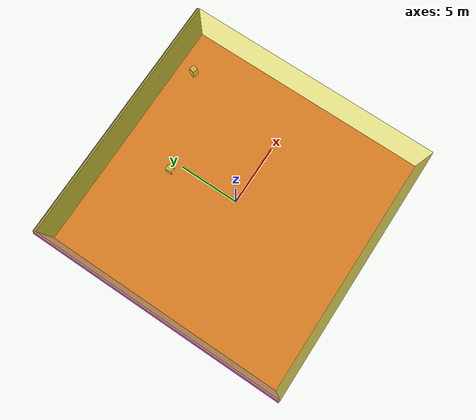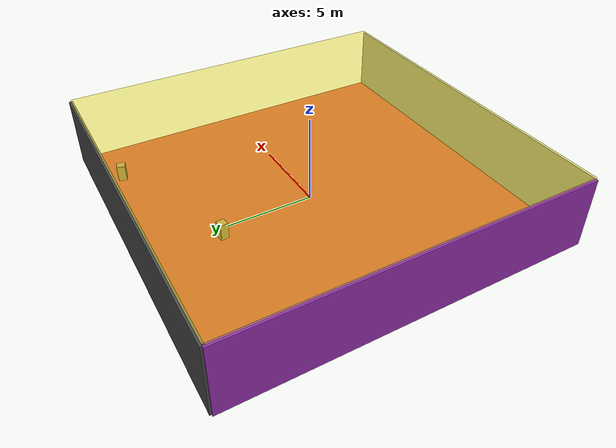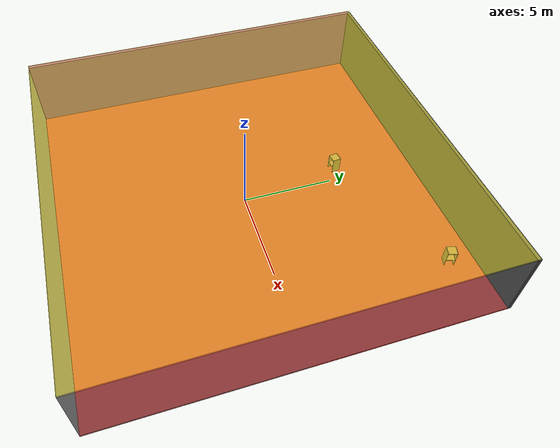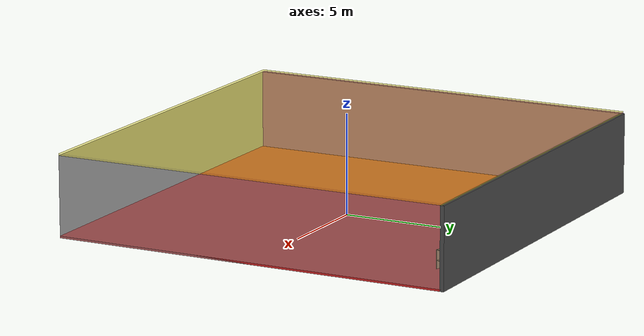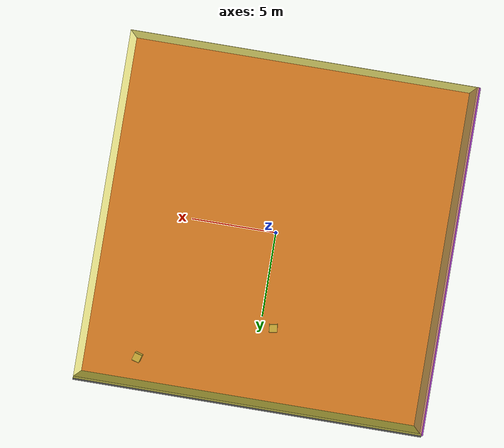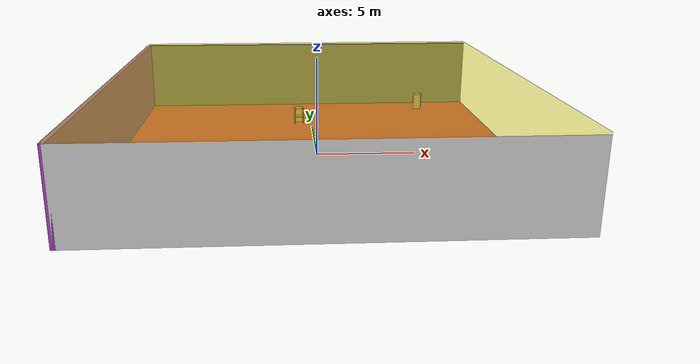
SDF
<sdf version="1.4">
 <world name="default">
  <physics type="ode">
   <max_step_size>0.001</max_step_size>
   <real_time_factor>1</real_time_factor>
   <real_time_update_rate>1000</real_time_update_rate>
   <gravity>0 0 -9.8</gravity>
  </physics>
  <scene><ambient>0.4 0.4 0.4 1</ambient><background>0.7 0.7 0.7 1</background><shadows>1</shadows></scene>
  <model name="Surrounding">
   <static>1</static>
   <link name="Ceiling">
    <collision name="Ceiling_Collision"><geometry><box><size>20 20 0.1</size></box></geometry></collision>
    <visual name="Ceiling_Visual">
     <geometry><box><size>20 20 0.1</size></box></geometry>
     <material>
      <script>
       <uri>file://media/materials/scripts/gazebo.material</uri>
       <name>Gazebo/YellowTransparent</name>
      </script>
     </material>
    </visual>
    <pose>0 0 4.05 0 0 0</pose>
   </link>
   <link name="Wall_South">
    <collision name="Wall_South_Collision">
     <geometry><box><size>20 0 4</size></box></geometry>
     <pose>0 0 2 0 -0 0</pose>
    </collision>
    <visual name="Wall_South_Visual">
     <pose>0 0 2 0 -0 0</pose>
     <geometry><box><size>20 0 4</size></box></geometry>
     <material>
      <script><uri>file://media/materials/scripts/gazebo.material</uri><name>Gazebo/LightOn</name></script>
     </material>
    </visual>
    <velocity_decay><linear>0</linear><angular>0</angular></velocity_decay>
    <pose>0 -10 0 0 -0 0</pose>
   </link>
   <link name="Wall_East">
    <collision name="Wall_21_Collision">
     <geometry><box><size>20 0 4</size></box></geometry>
     <pose>0 0 2 0 -0 0</pose>
    </collision>
    <visual name="Wall_21_Visual">
     <pose>0 0 2 0 -0 0</pose>
     <geometry><box><size>20 0 4</size></box></geometry>
     <material>
      <script><uri>file://media/materials/scripts/gazebo.material</uri><name>Gazebo/GreyTransparent</name></script>
     </material>
    </visual>
    <velocity_decay><linear>0</linear><angular>0</angular></velocity_decay>
    <pose>10 0 0 0 -0 1.5708</pose>
   </link>
   <link name="Wall_North">
    <collision name="Wall_22_Collision">
     <geometry><box><size>20 0.2 4</size></box></geometry>
     <pose>0 0 2 0 -0 0</pose>
    </collision>
    <visual name="Wall_22_Visual">
     <pose>0 0 2 0 -0 0</pose>
     <geometry><box><size>20 0.2 4</size></box></geometry>
     <material>
      <script><uri>file://media/materials/scripts/gazebo.material</uri><name>Gazebo/Road</name></script>
     </material>
    </visual>
    <velocity_decay><linear>0</linear><angular>0</angular></velocity_decay>
    <pose>0 10 0 0 -0 0</pose>
   </link>
   <link name="Wall_West">
    <collision name="Wall_23_Collision">
     <geometry><box><size>20 0.2 4</size></box></geometry>
     <pose>0 0 2 0 -0 0</pose>
    </collision>
    <visual name="Wall_23_Visual">
     <pose>0 0 2 0 -0 0</pose>
     <geometry><box><size>20 0.2 4</size></box></geometry>
     <material>
      <script><uri>file://media/materials/scripts/gazebo.material</uri><name>Gazebo/Purple</name></script>
     </material>
    </visual>
    <velocity_decay><linear>0</linear><angular>0</angular></velocity_decay>
    <pose>-10 0 0 0 0 -1.5708</pose>
   </link>
   <link name="Ground_link">
    <collision name="collision">
     <pose>0 0 .05 0 -0 0</pose>
     <geometry><box><size>20 20 0.1</size></box></geometry>
    </collision>
    <visual name="visual">
     <pose>0 0 .05 0 -0 0</pose>
     <geometry><box><size>20 20 0.1</size></box></geometry>
     <material>
      <script><uri>file://media/materials/scripts/gazebo.material</uri><name>Gazebo/RedGlow</name></script>
     </material>
    </visual>
   </link>
   <static>1</static>
  </model>
  <spherical_coordinates>
   <surface_model>EARTH_WGS84</surface_model>
   <latitude_deg>0</latitude_deg>
   <longitude_deg>0</longitude_deg>
   <elevation>0</elevation>
   <heading_deg>0</heading_deg>
  </spherical_coordinates>
  <light name="lightball_0" type="diffuse">
   <diffuse>0.8 0.8 0.8 1</diffuse>
   <specular>0.2 0.2 0.2 1</specular>
   <attenuation>
    <range>100</range>
    <constant>0.7</constant>
    <linear>0.01</linear>
    <quadratic>0.001</quadratic>
   </attenuation>
   <direction>-0.5 0.1 -0.9</direction>
   <pose>-0.457250121373 -7.09997906922 3.20098685233 0 0 0</pose>
  </light>
  <light name="lightball_1" type="diffuse">
   <diffuse>0.8 0.8 0.8 1</diffuse>
   <specular>0.2 0.2 0.2 1</specular>
   <attenuation>
    <range>100</range>
    <constant>0.7</constant>
    <linear>0.01</linear>
    <quadratic>0.001</quadratic>
   </attenuation>
   <direction>-0.5 0.1 -0.9</direction>
   <pose>2.97669964034 -4.26278891486 2.4420067459 0 0 0</pose>
  </light>
  <light name="lightball_2" type="diffuse">
   <diffuse>0.8 0.8 0.8 1</diffuse>
   <specular>0.2 0.2 0.2 1</specular>
   <attenuation>
    <range>100</range>
    <constant>0.7</constant>
    <linear>0.01</linear>
    <quadratic>0.001</quadratic>
   </attenuation>
   <direction>-0.5 0.1 -0.9</direction>
   <pose>-7.39560512413 0.624300925711 0.652318941972 0 0 0</pose>
  </light>
  <light name="lightball_3" type="diffuse">
   <diffuse>0.8 0.8 0.8 1</diffuse>
   <specular>0.2 0.2 0.2 1</specular>
   <attenuation>
    <range>100</range>
    <constant>0.7</constant>
    <linear>0.01</linear>
    <quadratic>0.001</quadratic>
   </attenuation>
   <direction>-0.5 0.1 -0.9</direction>
   <pose>-1.7933293679 7.06938800756 2.14912122765 0 0 0</pose>
  </light>
  <light name="lightball_4" type="diffuse">
   <diffuse>0.8 0.8 0.8 1</diffuse>
   <specular>0.2 0.2 0.2 1</specular>
   <attenuation>
    <range>100</range>
    <constant>0.7</constant>
    <linear>0.01</linear>
    <quadratic>0.001</quadratic>
   </attenuation>
   <direction>-0.5 0.1 -0.9</direction>
   <pose>6.89023230428 -4.6106727019 0.789438214896 0 0 0</pose>
  </light>
  <light name="lightball_5" type="diffuse">
   <diffuse>0.8 0.8 0.8 1</diffuse>
   <specular>0.2 0.2 0.2 1</specular>
   <attenuation>
    <range>100</range>
    <constant>0.7</constant>
    <linear>0.01</linear>
    <quadratic>0.001</quadratic>
   </attenuation>
   <direction>-0.5 0.1 -0.9</direction>
   <pose>8.83237948381 -7.48184544192 2.46438239998 0 0 0</pose>
  </light>
  <light name="lightball_6" type="diffuse">
   <diffuse>0.8 0.8 0.8 1</diffuse>
   <specular>0.2 0.2 0.2 1</specular>
   <attenuation>
    <range>100</range>
    <constant>0.7</constant>
    <linear>0.01</linear>
    <quadratic>0.001</quadratic>
   </attenuation>
   <direction>-0.5 0.1 -0.9</direction>
   <pose>0.63750677891 5.60908391698 3.39112390962 0 0 0</pose>
  </light>
  <light name="lightball_7" type="diffuse">
   <diffuse>0.8 0.8 0.8 1</diffuse>
   <specular>0.2 0.2 0.2 1</specular>
   <attenuation>
    <range>100</range>
    <constant>0.7</constant>
    <linear>0.01</linear>
    <quadratic>0.001</quadratic>
   </attenuation>
   <direction>-0.5 0.1 -0.9</direction>
   <pose>4.86775703241 -9.30548109093 3.39830540018 0 0 0</pose>
  </light>
  <include><uri>model://cabinet</uri><pose>-0.752521025161 5.54358846632 0 0 0 1.70117609362</pose></include>
  <include><uri>model://cabinet</uri><pose>6.8408672393 8.54143392439 0 0 0 2.85677489265</pose></include>
 </world>
</sdf>

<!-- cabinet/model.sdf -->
<sdf version="1.5">
  <model name="cabinet">
    <static>true</static>
    <link name="cabinet_bottom_plate">
      <inertial>
        <pose>0 0 -1 0 0 0</pose>
        <inertia>
          <ixx>2.050000</ixx>
          <ixy>0</ixy>
          <ixz>0</ixz>
          <iyy>2.050000</iyy>
          <iyz>0</iyz>
          <izz>2.050000</izz>
        </inertia>
        <mass>25.000000</mass>
      </inertial>
      <collision name="cabinet_bottom_plate_geom">
        <pose>0 0 0.010000 0 0 0</pose>
        <geometry>
          <box>
            <size>0.450000 0.450000 0.020000</size>
          </box>
        </geometry>
      </collision>
      <visual name="cabinet_bottom_plate_geom_visual">
        <pose>0 0 0.010000 0 0 0</pose>
        <geometry>
          <box>
            <size>0.450000 0.450000 0.020000</size>
          </box>
        </geometry>
        <material>
          <script>
            <uri>model://media/materials/scripts/gazebo.material</uri>
            <name>Gazebo/Wood</name>
          </script>
        </material>
      </visual>
      <collision name="cabinet_bottom_plate_geom_cabinet_back_plate">
        <pose>0.235000 0 0.510000 0 0 0</pose>
        <geometry>
          <box>
            <size>0.020000 0.450000 1.020000</size>
          </box>
        </geometry>
      </collision>
      <visual name="cabinet_bottom_plate_geom_cabinet_back_plate_visual">
        <pose>0.235000 0 0.510000 0 0 0</pose>
        <geometry>
          <box>
            <size>0.020000 0.450000 1.020000</size>
          </box>
        </geometry>
        <material>
          <script>
            <uri>model://media/materials/scripts/gazebo.material</uri>
            <name>Gazebo/Wood</name>
          </script>
        </material>
      </visual>
      <collision name="cabinet_bottom_plate_geom_cabinet_left_plate">
        <pose>0 0.235000 0.510000 0 0 0</pose>
        <geometry>
          <box>
            <size>0.450000 0.020000 1.020000</size>
          </box>
        </geometry>
      </collision>
      <visual name="cabinet_bottom_plate_geom_cabinet_left_plate_visual">
        <pose>0 0.235000 0.510000 0 0 0</pose>
        <geometry>
          <box>
            <size>0.450000 0.020000 1.020000</size>
          </box>
        </geometry>
        <material>
          <script>
            <uri>model://media/materials/scripts/gazebo.material</uri>
            <name>Gazebo/Wood</name>
          </script>
        </material>
      </visual>
      <collision name="cabinet_bottom_plate_geom_cabinet_middle_plate">
        <pose>0 0 0.510000 0 0 0</pose>
        <geometry>
          <box>
            <size>0.450000 0.450000 0.020000</size>
          </box>
        </geometry>
      </collision>
      <visual name="cabinet_bottom_plate_geom_cabinet_middle_plate_visual">
        <pose>0 0 0.510000 0 0 0</pose>
        <geometry>
          <box>
            <size>0.450000 0.450000 0.020000</size>
          </box>
        </geometry>
        <material>
          <script>
            <uri>model://media/materials/scripts/gazebo.material</uri>
            <name>Gazebo/Wood</name>
          </script>
        </material>
      </visual>
      <collision name="cabinet_bottom_plate_geom_cabinet_right_plate">
        <pose>0 -0.235000 0.510000 0 0 0</pose>
        <geometry>
          <box>
            <size>0.450000 0.020000 1.020000</size>
          </box>
        </geometry>
      </collision>
      <visual name="cabinet_bottom_plate_geom_cabinet_right_plate_visual">
        <pose>0 -0.235000 0.510000 0 0 0</pose>
        <geometry>
          <box>
            <size>0.450000 0.020000 1.020000</size>
          </box>
        </geometry>
        <material>
          <script>
            <uri>model://media/materials/scripts/gazebo.material</uri>
            <name>Gazebo/Wood</name>
          </script>
        </material>
      </visual>
      <collision name="cabinet_bottom_plate_geom_cabinet_top_plate">
        <pose>0 0 1.010000 0 0 0</pose>
        <geometry>
          <box>
            <size>0.450000 0.450000 0.020000</size>
          </box>
        </geometry>
      </collision>
      <visual name="cabinet_bottom_plate_geom_cabinet_top_plate_visual">
        <pose>0 0 1.010000 0 0 0</pose>
        <geometry>
          <box>
            <size>0.450000 0.450000 0.020000</size>
          </box>
        </geometry>
        <material>
          <script>
            <uri>model://media/materials/scripts/gazebo.material</uri>
            <name>Gazebo/Wood</name>
          </script>
        </material>
      </visual>
    </link>
  </model>
</sdf>
